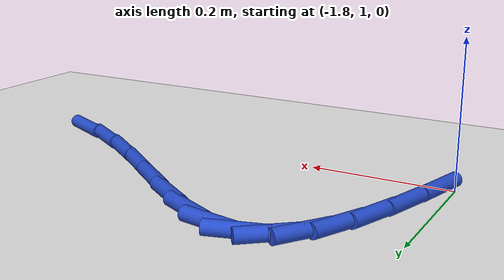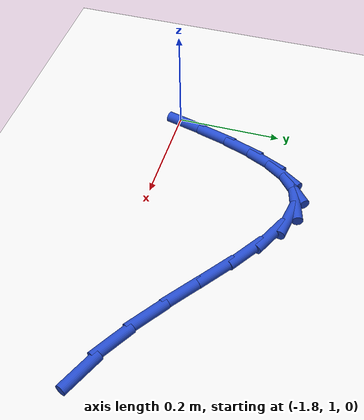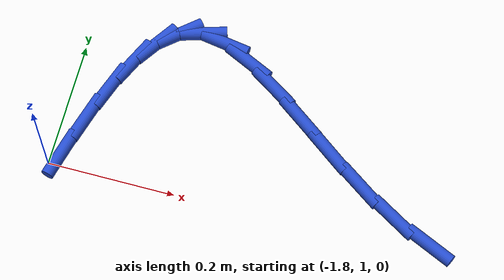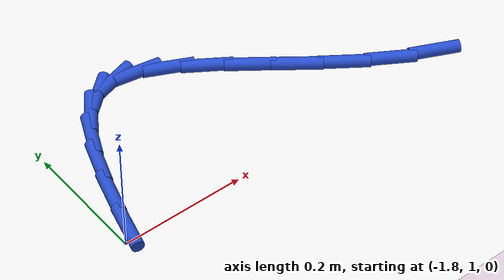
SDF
<sdf version="1.6">
 <world name="default">
  <model name="ground_plane">
   <static>1</static>
   <link name="link">
    <collision name="collision">
     <geometry><plane><normal>0 0 1</normal><size>100 100</size></plane></geometry>
     <surface><friction><ode><mu>100</mu><mu2>50</mu2></ode></friction></surface>
    </collision>
    <visual name="visual">
     <cast_shadows>0</cast_shadows>
     <geometry><plane><normal>0 0 1</normal><size>100 100</size></plane></geometry>
     <material>
      <script><uri>file://media/materials/scripts/gazebo.material</uri><name>Gazebo/WhiteGlow</name></script>
     </material>
    </visual>
   </link>
  </model>
  <model name="line">
   <link name="link_30">
    <pose>-1.2081965067392617 1.0192757044248413 0.01 0 1.57 -0.4290457561640787</pose>
    <collision name="collision">
     <geometry><cylinder><radius>0.01</radius><length>0.08</length></cylinder></geometry>
    </collision>
    <visual name="visual">
     <material>
      <script><name>Gazebo/Blue</name><uri>file://media/materials/scripts/gazebo.material</uri></script>
     </material>
     <geometry><cylinder><radius>0.01</radius><length>0.08</length></cylinder></geometry>
    </visual>
   </link>
   <link name="link_31">
    <pose>-1.2704997964456644 1.0477773769984249 0.01 0 1.57 -0.5457555871257714</pose>
    <collision name="collision">
     <geometry><cylinder><radius>0.01</radius><length>0.08</length></cylinder></geometry>
    </collision>
    <visual name="visual">
     <material>
      <script><name>Gazebo/Blue</name><uri>file://media/materials/scripts/gazebo.material</uri></script>
     </material>
     <geometry><cylinder><radius>0.01</radius><length>0.08</length></cylinder></geometry>
    </visual>
   </link>
   <link name="link_32">
    <pose>-1.3311868718032396 1.084631451838187 0.01 0 1.57 -0.6155136908418851</pose>
    <collision name="collision">
     <geometry><cylinder><radius>0.01</radius><length>0.08</length></cylinder></geometry>
    </collision>
    <visual name="visual">
     <material>
      <script><name>Gazebo/Blue</name><uri>file://media/materials/scripts/gazebo.material</uri></script>
     </material>
     <geometry><cylinder><radius>0.01</radius><length>0.08</length></cylinder></geometry>
    </visual>
   </link>
   <link name="link_33">
    <pose>-1.3897017417257296 1.1260106959258198 0.01 0 1.57 -0.6462165004227683</pose>
    <collision name="collision">
     <geometry><cylinder><radius>0.01</radius><length>0.08</length></cylinder></geometry>
    </collision>
    <visual name="visual">
     <material>
      <script><name>Gazebo/Blue</name><uri>file://media/materials/scripts/gazebo.material</uri></script>
     </material>
     <geometry><cylinder><radius>0.01</radius><length>0.08</length></cylinder></geometry>
    </visual>
   </link>
   <link name="link_34">
    <pose>-1.4454884151268772 1.1680878762430158 0.01 0 1.57 -0.6382513347786118</pose>
    <collision name="collision">
     <geometry><cylinder><radius>0.01</radius><length>0.08</length></cylinder></geometry>
    </collision>
    <visual name="visual">
     <material>
      <script><name>Gazebo/Blue</name><uri>file://media/materials/scripts/gazebo.material</uri></script>
     </material>
     <geometry><cylinder><radius>0.01</radius><length>0.08</length></cylinder></geometry>
    </visual>
   </link>
   <link name="link_35">
    <pose>-1.4979909009204253 1.2070357597714674 0.01 0 1.57 -0.5815705570723281</pose>
    <collision name="collision">
     <geometry><cylinder><radius>0.01</radius><length>0.08</length></cylinder></geometry>
    </collision>
    <visual name="visual">
     <material>
      <script><name>Gazebo/Blue</name><uri>file://media/materials/scripts/gazebo.material</uri></script>
     </material>
     <geometry><cylinder><radius>0.01</radius><length>0.08</length></cylinder></geometry>
    </visual>
   </link>
   <link name="link_36">
    <pose>-1.5466532080201159 1.2390271134928663 0.01 0 1.57 -0.44678245226051855</pose>
    <collision name="collision">
     <geometry><cylinder><radius>0.01</radius><length>0.08</length></cylinder></geometry>
    </collision>
    <visual name="visual">
     <material>
      <script><name>Gazebo/Blue</name><uri>file://media/materials/scripts/gazebo.material</uri></script>
     </material>
     <geometry><cylinder><radius>0.01</radius><length>0.08</length></cylinder></geometry>
    </visual>
   </link>
   <link name="link_37">
    <pose>-1.5909193453396928 1.2602347043889062 0.01 0 1.57 -0.16650359191588424</pose>
    <collision name="collision">
     <geometry><cylinder><radius>0.01</radius><length>0.08</length></cylinder></geometry>
    </collision>
    <visual name="visual">
     <material>
      <script><name>Gazebo/Blue</name><uri>file://media/materials/scripts/gazebo.material</uri></script>
     </material>
     <geometry><cylinder><radius>0.01</radius><length>0.08</length></cylinder></geometry>
    </visual>
   </link>
   <link name="link_38">
    <pose>-1.630235803996306 1.2668422100727026 0.01 0 1.57 0.28674425392797936</pose>
    <collision name="collision">
     <geometry><cylinder><radius>0.01</radius><length>0.08</length></cylinder></geometry>
    </collision>
    <visual name="visual">
     <material>
      <script><name>Gazebo/Blue</name><uri>file://media/materials/scripts/gazebo.material</uri></script>
     </material>
     <geometry><cylinder><radius>0.01</radius><length>0.08</length></cylinder></geometry>
    </visual>
   </link>
   <link name="link_39">
    <pose>-1.6644410158795617 1.2567561006145194 0.01 0 1.57 0.7044753675764063</pose>
    <collision name="collision">
     <geometry><cylinder><radius>0.01</radius><length>0.08</length></cylinder></geometry>
    </collision>
    <visual name="visual">
     <material>
      <script><name>Gazebo/Blue</name><uri>file://media/materials/scripts/gazebo.material</uri></script>
     </material>
     <geometry><cylinder><radius>0.01</radius><length>0.08</length></cylinder></geometry>
    </visual>
   </link>
   <link name="link_40">
    <pose>-1.6941896630268245 1.2314707085795062 0.01 0 1.57 0.9764637152075905</pose>
    <collision name="collision">
     <geometry><cylinder><radius>0.01</radius><length>0.08</length></cylinder></geometry>
    </collision>
    <visual name="visual">
     <material>
      <script><name>Gazebo/Blue</name><uri>file://media/materials/scripts/gazebo.material</uri></script>
     </material>
     <geometry><cylinder><radius>0.01</radius><length>0.08</length></cylinder></geometry>
    </visual>
   </link>
   <link name="link_41">
    <pose>-1.7202383773495327 1.1929284915721095 0.01 0 1.57 1.1368240913740513</pose>
    <collision name="collision">
     <geometry><cylinder><radius>0.01</radius><length>0.08</length></cylinder></geometry>
    </collision>
    <visual name="visual">
     <material>
      <script><name>Gazebo/Blue</name><uri>file://media/materials/scripts/gazebo.material</uri></script>
     </material>
     <geometry><cylinder><radius>0.01</radius><length>0.08</length></cylinder></geometry>
    </visual>
   </link>
   <link name="link_42">
    <pose>-1.7433437907591243 1.1430719071967768 0.01 0 1.57 1.2312849815187408</pose>
    <collision name="collision">
     <geometry><cylinder><radius>0.01</radius><length>0.08</length></cylinder></geometry>
    </collision>
    <visual name="visual">
     <material>
      <script><name>Gazebo/Blue</name><uri>file://media/materials/scripts/gazebo.material</uri></script>
     </material>
     <geometry><cylinder><radius>0.01</radius><length>0.08</length></cylinder></geometry>
    </visual>
   </link>
   <link name="link_43">
    <pose>-1.7642625351670371 1.0838434130579542 0.01 0 1.57 1.2863552046637543</pose>
    <collision name="collision">
     <geometry><cylinder><radius>0.01</radius><length>0.08</length></cylinder></geometry>
    </collision>
    <visual name="visual">
     <material>
      <script><name>Gazebo/Blue</name><uri>file://media/materials/scripts/gazebo.material</uri></script>
     </material>
     <geometry><cylinder><radius>0.01</radius><length>0.08</length></cylinder></geometry>
    </visual>
   </link>
   <link name="link_44">
    <pose>-1.7837512424847082 1.0171854667600893 0.01 0 1.57 1.3156803475442824</pose>
    <collision name="collision">
     <geometry><cylinder><radius>0.01</radius><length>0.08</length></cylinder></geometry>
    </collision>
    <visual name="visual">
     <material>
      <script><name>Gazebo/Blue</name><uri>file://media/materials/scripts/gazebo.material</uri></script>
     </material>
     <geometry><cylinder><radius>0.01</radius><length>0.08</length></cylinder></geometry>
    </visual>
   </link>
  </model>
 </world>
</sdf>
